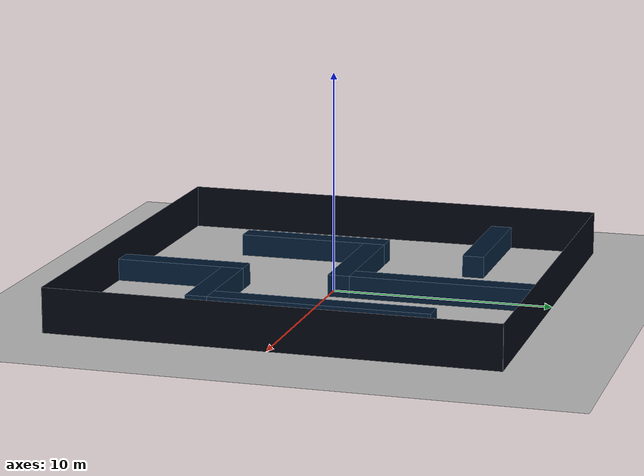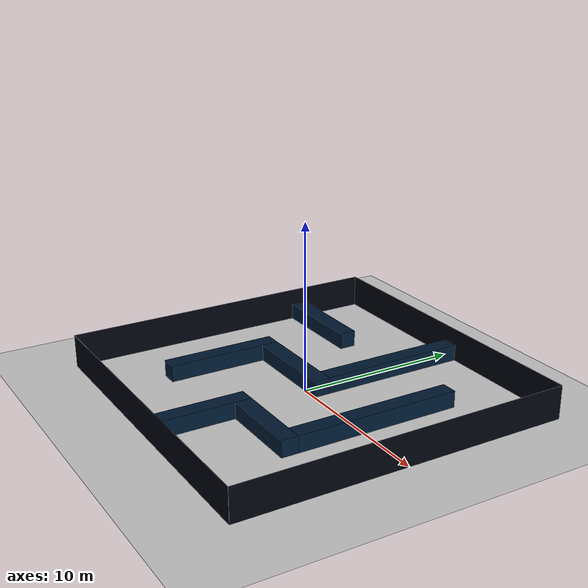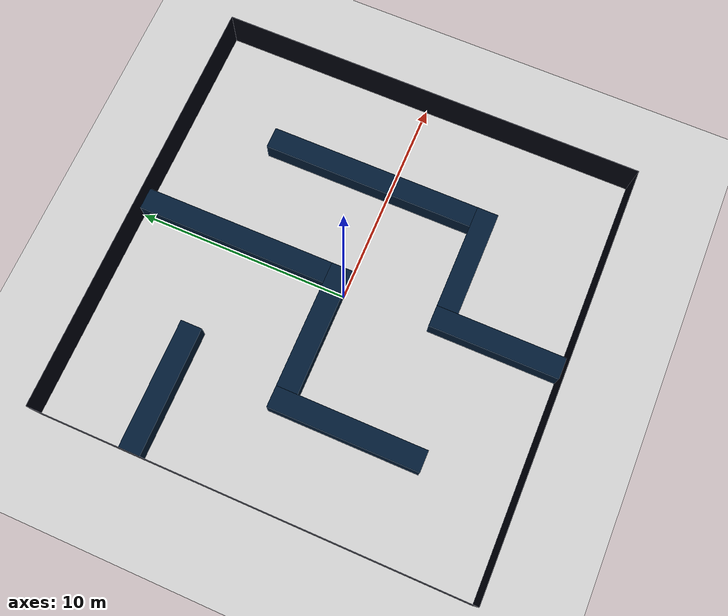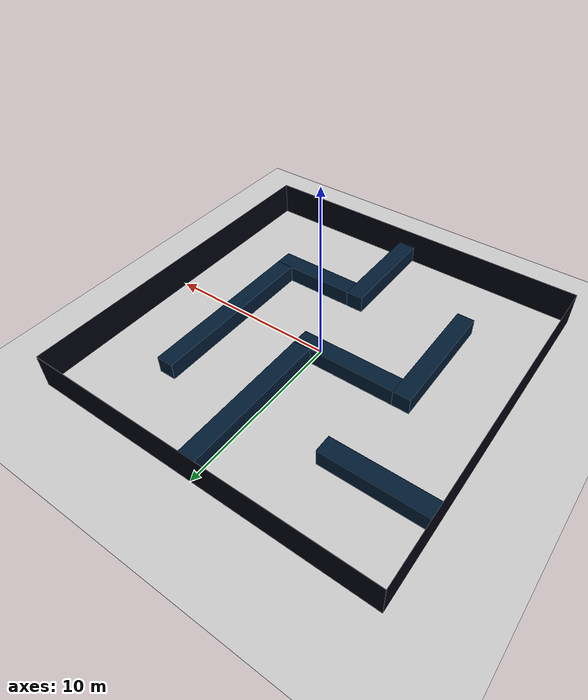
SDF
<?xml version="1.0"?>
<sdf version='1.8'>
    <world name='maze_class7'>
        <physics name='1ms' type='ignored'>
            <max_step_size>0.001</max_step_size>
            <real_time_factor>1</real_time_factor>
            <real_time_update_rate>1000</real_time_update_rate>
        </physics>

        <plugin name="gz::sim::systems::Physics" filename="gz-sim-physics-system" />
        <plugin name="gz::sim::systems::UserCommands" filename="gz-sim-user-commands-system" />
        <plugin name="gz::sim::systems::SceneBroadcaster" filename="gz-sim-scene-broadcaster-system" />
        <plugin name="gz::sim::systems::Contact" filename="gz-sim-contact-system" />

        <light name='sun' type='directional'>
            <cast_shadows>1</cast_shadows>
            <pose>0 0 10 0 -0 0</pose>
            <diffuse>0.8 0.8 0.8 1</diffuse>
            <specular>0.2 0.2 0.2 1</specular>
            <attenuation>
                <range>1000</range>
                <constant>0.90000000000000002</constant>
                <linear>0.01</linear>
                <quadratic>0.001</quadratic>
            </attenuation>
            <direction>-0.5 0.1 -0.9</direction>
            <spot>
                <inner_angle>0</inner_angle>
                <outer_angle>0</outer_angle>
                <falloff>0</falloff>
            </spot>
        </light>
        <gravity>0 0 -9.8</gravity>
        <magnetic_field>6e-06 2.3e-05 -4.2e-05</magnetic_field>
        <atmosphere type='adiabatic' />
        <scene>
            <ambient>0.4 0.4 0.4 1</ambient>
            <background>0.7 0.7 0.7 1</background>
            <shadows>1</shadows>
        </scene>
        <model name='ground_plane'>
            <static>1</static>
            <link name='link'>
                <collision name='collision'>
                    <geometry>
                        <plane>
                            <normal>0 0 1</normal>
                            <size>100 100</size>
                        </plane>
                    </geometry>
                    <surface>
                        <friction>
                            <ode />
                        </friction>
                        <bounce />
                        <contact />
                    </surface>
                </collision>
                <visual name='visual'>
                    <geometry>
                        <plane>
                            <normal>0 0 1</normal>
                            <size>100 100</size>
                        </plane>
                    </geometry>
                    <material>
                        <ambient>0.8 0.8 0.8 1</ambient>
                        <diffuse>0.8 0.8 0.8 1</diffuse>
                        <specular>0.8 0.8 0.8 1</specular>
                    </material>
                </visual>
            </link>
            <pose>0 0 0 0 -0 0</pose>
        </model>

        <model name='border'>
            <pose>0 0 1 0 0 0</pose>
            <static>true</static>
            <link name='wall1'>
                <pose>-10.005 0 0 0 0 0</pose>
                <collision name='wall1_collision'>
                    <geometry>
                        <box>
                            <size>0.01 20 2</size>
                        </box>
                    </geometry>
                </collision>
                <visual name='wall1_visual'>
                    <geometry>
                        <box>
                            <size>0.01 20 2</size>
                        </box>
                    </geometry>
                    <material>
                        <ambient>0.1 0.1 0.1 1</ambient>
                        <diffuse>0 0.01 0.05 1</diffuse>
                        <specular>0 0.01 0.05 1</specular>
                    </material>
                </visual>
            </link>
            <link name='wall2'>
                <pose>10.005 0 0 0 0 0</pose>
                <collision name='wall2_collision'>
                    <geometry>
                        <box>
                            <size>0.01 20 2</size>
                        </box>
                    </geometry>
                </collision>
                <visual name='wall2_visual'>
                    <geometry>
                        <box>
                            <size>0.01 20 2</size>
                        </box>
                    </geometry>
                    <material>
                        <ambient>0.1 0.1 0.1 1</ambient>
                        <diffuse>0 0.01 0.05 1</diffuse>
                        <specular>0 0.01 0.05 1</specular>
                    </material>
                </visual>
            </link>
            <link name='wall3'>
                <pose>0 10.005 0 0 0 0</pose>
                <collision name='wall3_collision'>
                    <geometry>
                        <box>
                            <size>20 0.01 2</size>
                        </box>
                    </geometry>
                </collision>
                <visual name='wall3_visual'>
                    <geometry>
                        <box>
                            <size>20 0.01 2</size>
                        </box>
                    </geometry>
                    <material>
                        <ambient>0.1 0.1 0.1 1</ambient>
                        <diffuse>0 0.01 0.05 1</diffuse>
                        <specular>0 0.01 0.05 1</specular>
                    </material>
                </visual>
            </link>
            <link name='wall4'>
                <pose>0 -10.005 0 0 0 0</pose>
                <collision name='wall4_collision'>
                    <geometry>
                        <box>
                            <size>20 0.01 2</size>
                        </box>
                    </geometry>
                </collision>
                <visual name='wall4_visual'>
                    <geometry>
                        <box>
                            <size>20 0.01 2</size>
                        </box>
                    </geometry>
                    <material>
                        <ambient>0.1 0.1 0.1 1</ambient>
                        <diffuse>0 0.01 0.05 1</diffuse>
                        <specular>0 0.01 0.05 1</specular>
                    </material>
                </visual>
            </link>
        </model>

        <model name='obstacles'>
            <pose>0 0 0.5 0 0 0</pose>
            <static>true</static>

            <!-- wall1: horizontal — center(-7, 5.5), size(6×1) -->
            <link name='wall1'>
                <pose>-7 5.5 0 0 0 0</pose>
                <collision name='wall1_collision'>
                    <geometry><box><size>6 1 1</size></box></geometry>
                </collision>
                <visual name='wall1_visual'>
                    <geometry><box><size>6 1 1</size></box></geometry>
                    <material>
                        <ambient>0.1 0.1 0.1 1</ambient>
                        <diffuse>0 0.1 0.2 1</diffuse>
                        <specular>0 0.01 0.05 1</specular>
                    </material>
                </visual>
            </link>

            <!-- wall2: vertical — center(-5.5, -2.5), size(1×7) -->
            <link name='wall2'>
                <pose>-5.5 -2.5 0 0 0 0</pose>
                <collision name='wall2_collision'>
                    <geometry><box><size>1 7 1</size></box></geometry>
                </collision>
                <visual name='wall2_visual'>
                    <geometry><box><size>1 7 1</size></box></geometry>
                    <material>
                        <ambient>0.1 0.1 0.1 1</ambient>
                        <diffuse>0 0.1 0.2 1</diffuse>
                        <specular>0 0.01 0.05 1</specular>
                    </material>
                </visual>
            </link>

            <!-- wall3: horizontal — center(-2, 0.5), size(6×1) -->
            <link name='wall3'>
                <pose>-2 0.5 0 0 0 0</pose>
                <collision name='wall3_collision'>
                    <geometry><box><size>6 1 1</size></box></geometry>
                </collision>
                <visual name='wall3_visual'>
                    <geometry><box><size>6 1 1</size></box></geometry>
                    <material>
                        <ambient>0.1 0.1 0.1 1</ambient>
                        <diffuse>0 0.1 0.2 1</diffuse>
                        <specular>0 0.01 0.05 1</specular>
                    </material>
                </visual>
            </link>

            <!-- wall4: vertical — center(0.5, 5.5), size(1×9) -->
            <link name='wall4'>
                <pose>0.5 5.5 0 0 0 0</pose>
                <collision name='wall4_collision'>
                    <geometry><box><size>1 9 1</size></box></geometry>
                </collision>
                <visual name='wall4_visual'>
                    <geometry><box><size>1 9 1</size></box></geometry>
                    <material>
                        <ambient>0.1 0.1 0.1 1</ambient>
                        <diffuse>0 0.1 0.2 1</diffuse>
                        <specular>0 0.01 0.05 1</specular>
                    </material>
                </visual>
            </link>

            <!-- wall5: vertical — center(0.5, -7), size(1×6) -->
            <link name='wall5'>
                <pose>0.5 -7 0 0 0 0</pose>
                <collision name='wall5_collision'>
                    <geometry><box><size>1 6 1</size></box></geometry>
                </collision>
                <visual name='wall5_visual'>
                    <geometry><box><size>1 6 1</size></box></geometry>
                    <material>
                        <ambient>0.1 0.1 0.1 1</ambient>
                        <diffuse>0 0.1 0.2 1</diffuse>
                        <specular>0 0.01 0.05 1</specular>
                    </material>
                </visual>
            </link>

            <!-- wall6: horizontal — center(3.5, -4.5), size(5×1) -->
            <link name='wall6'>
                <pose>3.5 -4.5 0 0 0 0</pose>
                <collision name='wall6_collision'>
                    <geometry><box><size>5 1 1</size></box></geometry>
                </collision>
                <visual name='wall6_visual'>
                    <geometry><box><size>5 1 1</size></box></geometry>
                    <material>
                        <ambient>0.1 0.1 0.1 1</ambient>
                        <diffuse>0 0.1 0.2 1</diffuse>
                        <specular>0 0.01 0.05 1</specular>
                    </material>
                </visual>
            </link>

            <!-- wall7: vertical — center(5.5, 1), size(1×10) -->
            <link name='wall7'>
                <pose>5.5 1 0 0 0 0</pose>
                <collision name='wall7_collision'>
                    <geometry><box><size>1 10 1</size></box></geometry>
                </collision>
                <visual name='wall7_visual'>
                    <geometry><box><size>1 10 1</size></box></geometry>
                    <material>
                        <ambient>0.1 0.1 0.1 1</ambient>
                        <diffuse>0 0.1 0.2 1</diffuse>
                        <specular>0 0.01 0.05 1</specular>
                    </material>
                </visual>
            </link>

        </model>
    </world>
</sdf>
